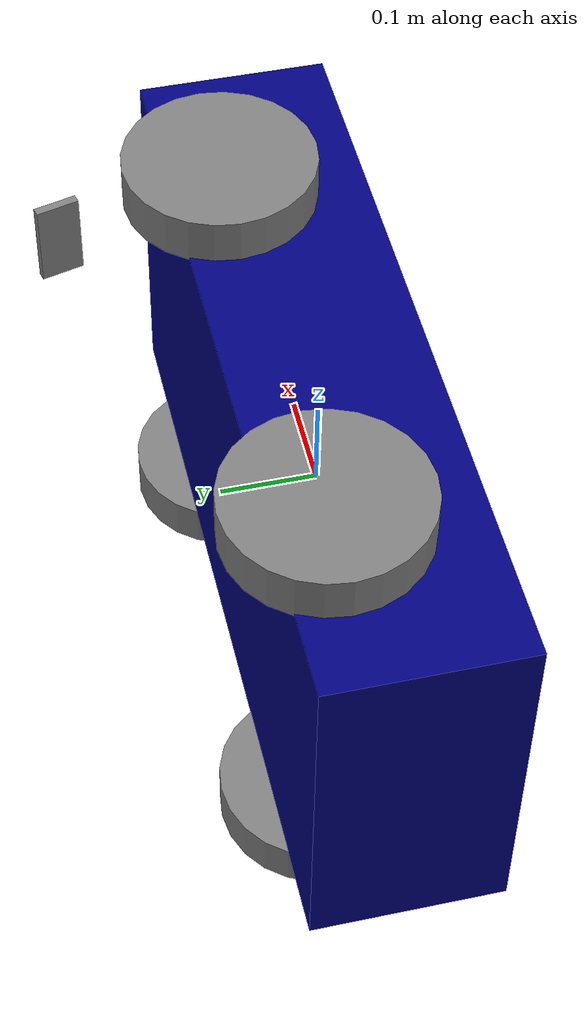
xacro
<?xml version="1.0"?>
<robot name="my_robot" xmlns:xacro="http://www.ros.org/wiki/xacro">

    <xacro:include filename="common_properties.xacro" />
    <xacro:include filename="robot_base.xacro" />
    <xacro:include filename="robot_base_gazebo.xacro" />
    <xacro:include filename="camera.xacro" />

</robot>

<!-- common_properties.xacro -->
<robot xmlns:xacro="http://www.ros.org/wiki/xacro">

    <xacro:property name="imu_width" value="0.05"/>
    <xacro:property name="imu_length" value="0.05"/>
    <xacro:property name="imu_height" value="0.03"/>
    <xacro:property name="imu_mass" value="0.1"/>

    <xacro:property name="imu_x_offset" value="0.215"/>
    <xacro:property name="imu_y_offset" value="0.0"/>
    <xacro:property name="imu_z_offset" value="0.0"/>

    <material name="blue">
        <color rgba="0 0 0.5 1" />
    </material>

    <material name="grey">
        <color rgba="0.5 0.5 0.5 1" />
    </material>

    <material name="orange">
        <color rgba="1.0 0.5 0 1" />
    </material>

    <material name="yellow">
        <color rgba="1.0 1.0 0 1" />
    </material>

    <material name="green">
        <color rgba="0.0 0.5 0.0 1.0"/>
    </material>

    <xacro:macro name="box_inertia" params="m l w h xyz rpy">
        <inertial>
            <origin xyz="${xyz}" rpy="${rpy}" />
            <mass value="${m}" />
            <inertia ixx="${(m/12) * (h*h + l*l)}" ixy="0" ixz="0"
                     iyy="${(m/12) * (w*w + l*l)}" iyz="0"
                     izz="${(m/12) * (w*w + h*h)}" />
        </inertial>
    </xacro:macro>

    <xacro:macro name="cylinder_inertia" params="m r h xyz rpy">
        <inertial>
            <origin xyz="${xyz}" rpy="${rpy}" />
            <mass value="${m}" />
            <inertia ixx="${(m/12) * (3*r*r + h*h)}" ixy="0" ixz="0"
                     iyy="${(m/12) * (3*r*r + h*h)}" iyz="0"
                     izz="${(m/2) * (r*r)}" />
        </inertial>
    </xacro:macro>

</robot>

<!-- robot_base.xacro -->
<robot xmlns:xacro="http://www.ros.org/wiki/xacro">

    <xacro:property name="base_length" value="0.8" />
    <xacro:property name="base_width" value="0.2" />
    <xacro:property name="base_height" value="0.4" />
    <xacro:property name="wheel_radius" value="0.1" />
    <xacro:property name="wheel_length" value="0.05" />
    <xacro:property name="imu_length" value="0.03" />
    <xacro:property name="imu_width" value="0.05" />
    <xacro:property name="imu_height" value="0.01" />

    <link name="base_footprint" />

    <link name="base_link">
        <visual>
            <geometry>
                <box size="${base_length} ${base_width} ${base_height}" />
            </geometry>
            <origin xyz="0 0 ${base_length - 0.1}" rpy="0 0 0" />
            <material name="blue" />
        </visual>
        <collision>
            <geometry>
               <box size="${base_length} ${base_width} ${base_height}" />
            </geometry>
            <origin xyz="0 0 ${base_length - 0.1}" rpy="0 0 0" />
        </collision>
          <xacro:box_inertia m="5.0" l="${2*base_length}" w="${2*base_width}" h="${2*base_height}"
                           xyz="0 0 ${base_height / 2.0}" rpy="0 0 0" />
    </link>

        <!-- IMU Link Definition -->
    <link name="imu_link">
        <visual>
            <geometry>
                <box size="${imu_length} ${imu_width} ${imu_height}" />
            </geometry>
            <origin xyz="0 0 ${imu_length - 0.1}" rpy="0 0 0" />
            <material name="green" />
        </visual>
        <collision>
            <geometry>
               <box size="${imu_length} ${imu_width} ${imu_height}" />
            </geometry>
            <origin xyz="0 0 ${imu_length - 0.1}" rpy="0 0 0" />
          </collision>
          <xacro:box_inertia m="5.0" l="${2*imu_length}" w="${2*imu_width}" h="${2*imu_height}"
                           xyz="0 0 ${imu_height / 2.0}" rpy="0 0 0" />

    </link>

    <xacro:macro name="wheel_link" params="prefix">
        <link name="${prefix}_wheel_link">
            <visual>
                <geometry>
                    <cylinder radius="${wheel_radius}" length="${wheel_length}" />
                </geometry>
                <origin xyz="0 0 0" rpy="${pi / 2.0} 0 0" />
                <material name="grey" />
            </visual>
            <collision>
                <geometry>
                    <cylinder radius="${wheel_radius}" length="${wheel_length}" />
                </geometry>
                <origin xyz="0 0 0" rpy="${pi / 2.0} 0 0" />
            </collision>
            <xacro:cylinder_inertia m="1.0" r="${2*wheel_radius}" h="${2*wheel_length}"
                                    xyz="0 0 0" rpy="${pi / 2.0} 0 0" />
        </link>
    </xacro:macro>

    <xacro:wheel_link prefix="right" />
    <xacro:wheel_link prefix="left" />
    <xacro:wheel_link prefix="right_rear" />
    <xacro:wheel_link prefix="left_rear" />

    <joint name="base_joint" type="fixed">
        <parent link="base_footprint" />
        <child link="base_link" />
        <origin xyz="0 0 ${-base_length + 0.1}" rpy="0 0 0"/>
    </joint>

    <joint name="base_imu_joint" type="fixed">
        <parent link="base_link" />
        <child link="imu_link" />
        <origin xyz="0 0 0.8" rpy="0 0 0" />
    </joint>

    <joint name="base_right_wheel_joint" type="continuous">
        <parent link="base_link" />
        <child link="right_wheel_link" />
        <origin xyz="0.225 0.05 0.4775" rpy="${pi / 2.0} 0 0" />
        <axis xyz="0 1 0" />
    </joint>

    <joint name="base_left_wheel_joint" type="continuous">
        <parent link="base_link" />
        <child link="left_wheel_link" />
        <origin xyz="0.225 ${wheel_length} 0.9225" rpy="${pi / 2.0} 0 0" />   ${wheel_length}
        <axis xyz="0 1 0" />
    </joint>

    <joint name="base_right_rear_wheel_joint" type="continuous">
        <parent link="base_link" />
        <child link="right_rear_wheel_link" />
        <origin xyz="-0.225 0.05 0.4775" rpy="${pi / 2.0} 0 0" />
        <axis xyz="0 1 0" />
    </joint>

    <joint name="base_left_rear_wheel_joint" type="continuous">
        <parent link="base_link" />
        <child link="left_rear_wheel_link" />
        <origin xyz="-0.225 0.05 0.9225" rpy="${pi / 2.0} 0 0" />
        <axis xyz="0 1 0" />
    </joint>

</robot>

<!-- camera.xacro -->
<robot xmlns:xacro="http://www.ros.org/wiki/xacro">

    <xacro:property name="camera_length" value="0.01" />
    <xacro:property name="camera_width" value="0.1" />
    <xacro:property name="camera_height" value="0.05" />

    <link name="camera_link">
        <visual>
            <geometry>
                <box size="${camera_length} ${camera_width} ${camera_height}" />
            </geometry>
            <material name="grey" />
        </visual>
        <collision>
            <geometry>
                <box size="${camera_length} ${camera_width} ${camera_height}" />
            </geometry>
        </collision>
        <xacro:box_inertia m="0.1" l="${camera_length}" w="${camera_width}" h="${camera_height}"
                           xyz="0 0 0" rpy="0 0 0" />
    </link>

    <joint name="base_camera_joint" type="fixed">
        <parent link="base_link" />
        <child link="camera_link" />
        <origin xyz="${(base_length + camera_length) / 2.0} 0.2 ${(base_height / 2.0) + 0.5}" rpy="${pi/2} 0 0.25" />
    </joint>

    <link name="camera_link_optical">
    </link>

    <joint name="camera_optical_joint" type="fixed">
        <!-- these values have to be these values otherwise the gazebo camera
            image won't be aligned properly with the frame it is supposedly
            originating from -->
        <origin xyz="0 0 0" rpy="${-pi/2} 0 ${-pi/2} "/>
        <parent link="camera_link"/>
        <child link="camera_link_optical"/>
    </joint>

    <gazebo reference="camera_link">
        <material>Gazebo/Red</material>
        <sensor name="camera" type="depth">
            <pose>0 0 0 0 0 0</pose>
            <visualize>true</visualize>
            <update_rate>10.0</update_rate>
            <camera>
                <horizontal_fov>1.089</horizontal_fov>
                <image>
                    <format>B8G8R8</format>
                    <width>640</width>
                    <height>480</height>
                </image>
                <clip>
                    <near>0.05</near>
                    <far>8.0</far>
                </clip>
            </camera>

            <plugin name="camera_controller" filename="libgazebo_ros_camera.so">
                <frame_name>camera_link_optical</frame_name>
                <min_depth>0.2</min_depth>
                <max_depth>100.2</max_depth>

            </plugin>
        </sensor>
    </gazebo>

</robot>
